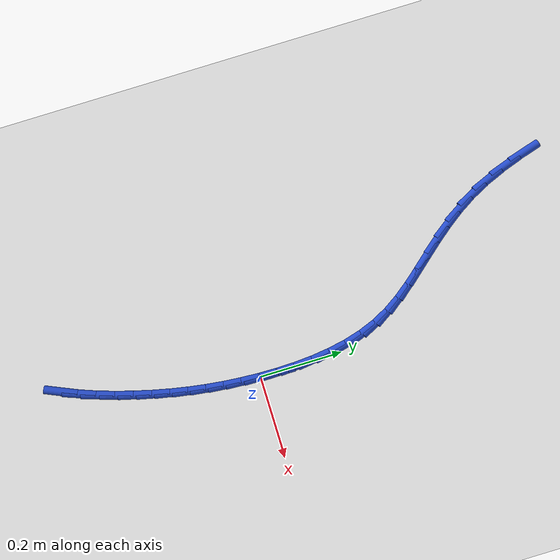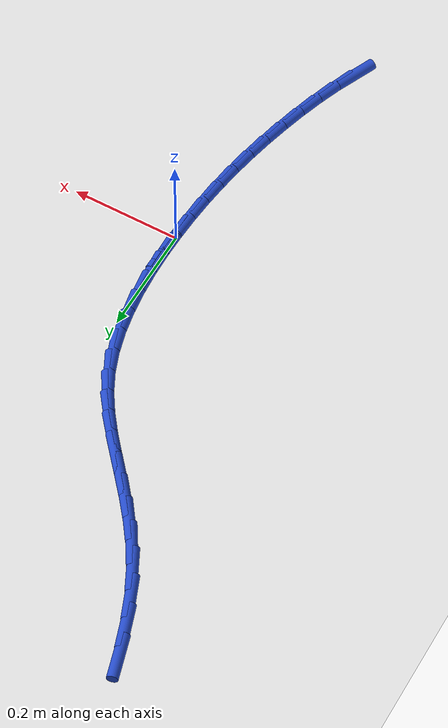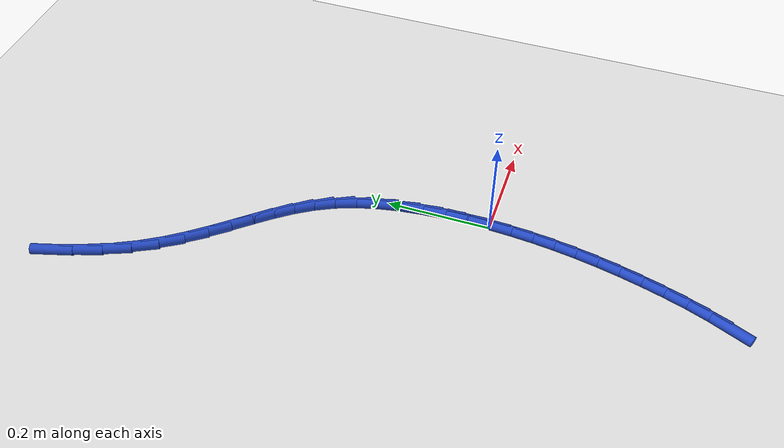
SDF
<sdf version="1.6">
 <world name="default">
  <model name="ground_plane">
   <static>1</static>
   <link name="link">
    <collision name="collision">
     <geometry><plane><normal>0 0 1</normal><size>100 100</size></plane></geometry>
     <surface><friction><ode><mu>100</mu><mu2>50</mu2></ode></friction></surface>
    </collision>
    <visual name="visual">
     <cast_shadows>0</cast_shadows>
     <geometry><plane><normal>0 0 1</normal><size>100 100</size></plane></geometry>
     <material>
      <script><uri>file://media/materials/scripts/gazebo.material</uri><name>Gazebo/WhiteGlow</name></script>
     </material>
    </visual>
   </link>
  </model>
  <model name="line">
   <link name="link_0">
    <pose>9.107298248878237e-18 -3.469446951953614e-17 0.01 0 1.57 1.554007148808215</pose>
    <collision name="collision">
     <geometry><cylinder><radius>0.01</radius><length>0.08</length></cylinder></geometry>
    </collision>
    <visual name="visual">
     <material>
      <script><name>Gazebo/Blue</name><uri>file://media/materials/scripts/gazebo.material</uri></script>
     </material>
     <geometry><cylinder><radius>0.01</radius><length>0.08</length></cylinder></geometry>
    </visual>
   </link>
   <link name="link_1">
    <pose>0.0007371283879256532 0.04390084657426722 0.01 0 1.57 -1.5478041733718482</pose>
    <collision name="collision">
     <geometry><cylinder><radius>0.01</radius><length>0.08</length></cylinder></geometry>
    </collision>
    <visual name="visual">
     <material>
      <script><name>Gazebo/Blue</name><uri>file://media/materials/scripts/gazebo.material</uri></script>
     </material>
     <geometry><cylinder><radius>0.01</radius><length>0.08</length></cylinder></geometry>
    </visual>
   </link>
   <link name="link_2">
    <pose>-0.0002791137424871577 0.08809257713083264 0.01 0 1.57 -1.5006837348284627</pose>
    <collision name="collision">
     <geometry><cylinder><radius>0.01</radius><length>0.08</length></cylinder></geometry>
    </collision>
    <visual name="visual">
     <material>
      <script><name>Gazebo/Blue</name><uri>file://media/materials/scripts/gazebo.material</uri></script>
     </material>
     <geometry><cylinder><radius>0.01</radius><length>0.08</length></cylinder></geometry>
    </visual>
   </link>
   <link name="link_3">
    <pose>-0.0033679881207795744 0.13207627860192328 0.01 0 1.57 -1.4448223519250336</pose>
    <collision name="collision">
     <geometry><cylinder><radius>0.01</radius><length>0.08</length></cylinder></geometry>
    </collision>
    <visual name="visual">
     <material>
      <script><name>Gazebo/Blue</name><uri>file://media/materials/scripts/gazebo.material</uri></script>
     </material>
     <geometry><cylinder><radius>0.01</radius><length>0.08</length></cylinder></geometry>
    </visual>
   </link>
   <link name="link_4">
    <pose>-0.008848756476492754 0.17535303791976634 0.01 0 1.57 -1.3784856092452</pose>
    <collision name="collision">
     <geometry><cylinder><radius>0.01</radius><length>0.08</length></cylinder></geometry>
    </collision>
    <visual name="visual">
     <material>
      <script><name>Gazebo/Blue</name><uri>file://media/materials/scripts/gazebo.material</uri></script>
     </material>
     <geometry><cylinder><radius>0.01</radius><length>0.08</length></cylinder></geometry>
    </visual>
   </link>
   <link name="link_5">
    <pose>-0.01704068053916784 0.21742394201658885 0.01 0 1.57 -1.2996304046909632</pose>
    <collision name="collision">
     <geometry><cylinder><radius>0.01</radius><length>0.08</length></cylinder></geometry>
    </collision>
    <visual name="visual">
     <material>
      <script><name>Gazebo/Blue</name><uri>file://media/materials/scripts/gazebo.material</uri></script>
     </material>
     <geometry><cylinder><radius>0.01</radius><length>0.08</length></cylinder></geometry>
    </visual>
   </link>
   <link name="link_6">
    <pose>-0.028263022038345985 0.25779007782461794 0.01 0 1.57 -1.2060408912454148</pose>
    <collision name="collision">
     <geometry><cylinder><radius>0.01</radius><length>0.08</length></cylinder></geometry>
    </collision>
    <visual name="visual">
     <material>
      <script><name>Gazebo/Blue</name><uri>file://media/materials/scripts/gazebo.material</uri></script>
     </material>
     <geometry><cylinder><radius>0.01</radius><length>0.08</length></cylinder></geometry>
    </visual>
   </link>
   <link name="link_7">
    <pose>-0.042835042703568374 0.2959525322760808 0.01 0 1.57 -1.0973697714715052</pose>
    <collision name="collision">
     <geometry><cylinder><radius>0.01</radius><length>0.08</length></cylinder></geometry>
    </collision>
    <visual name="visual">
     <material>
      <script><name>Gazebo/Blue</name><uri>file://media/materials/scripts/gazebo.material</uri></script>
     </material>
     <geometry><cylinder><radius>0.01</radius><length>0.08</length></cylinder></geometry>
    </visual>
   </link>
   <link name="link_8">
    <pose>-0.0610305144496441 0.3314708519281472 0.01 0 1.57 -0.9956041551505752</pose>
    <collision name="collision">
     <geometry><cylinder><radius>0.01</radius><length>0.08</length></cylinder></geometry>
    </collision>
    <visual name="visual">
     <material>
      <script><name>Gazebo/Blue</name><uri>file://media/materials/scripts/gazebo.material</uri></script>
     </material>
     <geometry><cylinder><radius>0.01</radius><length>0.08</length></cylinder></geometry>
    </visual>
   </link>
   <link name="link_9">
    <pose>-0.0825420773117032 0.3646514043995482 0.01 0 1.57 -0.9198542157680601</pose>
    <collision name="collision">
     <geometry><cylinder><radius>0.01</radius><length>0.08</length></cylinder></geometry>
    </collision>
    <visual name="visual">
     <material>
      <script><name>Gazebo/Blue</name><uri>file://media/materials/scripts/gazebo.material</uri></script>
     </material>
     <geometry><cylinder><radius>0.01</radius><length>0.08</length></cylinder></geometry>
    </visual>
   </link>
   <link name="link_10">
    <pose>-0.1066610130613632 0.39631634867222204 0.01 0 1.57 -0.8724217180830622</pose>
    <collision name="collision">
     <geometry><cylinder><radius>0.01</radius><length>0.08</length></cylinder></geometry>
    </collision>
    <visual name="visual">
     <material>
      <script><name>Gazebo/Blue</name><uri>file://media/materials/scripts/gazebo.material</uri></script>
     </material>
     <geometry><cylinder><radius>0.01</radius><length>0.08</length></cylinder></geometry>
    </visual>
   </link>
   <link name="link_11">
    <pose>-0.13267061957796325 0.4272981039446175 0.01 0 1.57 -0.8529867306650798</pose>
    <collision name="collision">
     <geometry><cylinder><radius>0.01</radius><length>0.08</length></cylinder></geometry>
    </collision>
    <visual name="visual">
     <material>
      <script><name>Gazebo/Blue</name><uri>file://media/materials/scripts/gazebo.material</uri></script>
     </material>
     <geometry><cylinder><radius>0.01</radius><length>0.08</length></cylinder></geometry>
    </visual>
   </link>
   <link name="link_12">
    <pose>-0.1598541947408422 0.45842908941518273 0.01 0 1.57 -0.8600962912364204</pose>
    <collision name="collision">
     <geometry><cylinder><radius>0.01</radius><length>0.08</length></cylinder></geometry>
    </collision>
    <visual name="visual">
     <material>
      <script><name>Gazebo/Blue</name><uri>file://media/materials/scripts/gazebo.material</uri></script>
     </material>
     <geometry><cylinder><radius>0.01</radius><length>0.08</length></cylinder></geometry>
    </visual>
   </link>
   <link name="link_13">
    <pose>-0.18749503642933948 0.4905417242823671 0.01 0 1.57 -0.8917560117625842</pose>
    <collision name="collision">
     <geometry><cylinder><radius>0.01</radius><length>0.08</length></cylinder></geometry>
    </collision>
    <visual name="visual">
     <material>
      <script><name>Gazebo/Blue</name><uri>file://media/materials/scripts/gazebo.material</uri></script>
     </material>
     <geometry><cylinder><radius>0.01</radius><length>0.08</length></cylinder></geometry>
    </visual>
   </link>
   <link name="link_14">
    <pose>-0.2148764425227939 0.5244684277446191 0.01 0 1.57 -0.9454676940283231</pose>
    <collision name="collision">
     <geometry><cylinder><radius>0.01</radius><length>0.08</length></cylinder></geometry>
    </collision>
    <visual name="visual">
     <material>
      <script><name>Gazebo/Blue</name><uri>file://media/materials/scripts/gazebo.material</uri></script>
     </material>
     <geometry><cylinder><radius>0.01</radius><length>0.08</length></cylinder></geometry>
    </visual>
   </link>
   <link name="link_15">
    <pose>-0.24128171090054457 0.5610416190003872 0.01 0 1.57 -1.017965380930945</pose>
    <collision name="collision">
     <geometry><cylinder><radius>0.01</radius><length>0.08</length></cylinder></geometry>
    </collision>
    <visual name="visual">
     <material>
      <script><name>Gazebo/Blue</name><uri>file://media/materials/scripts/gazebo.material</uri></script>
     </material>
     <geometry><cylinder><radius>0.01</radius><length>0.08</length></cylinder></geometry>
    </visual>
   </link>
   <link name="link_16">
    <pose>-0.2659941394419307 0.6010937172481206 0.01 0 1.57 -1.1044884392890215</pose>
    <collision name="collision">
     <geometry><cylinder><radius>0.01</radius><length>0.08</length></cylinder></geometry>
    </collision>
    <visual name="visual">
     <material>
      <script><name>Gazebo/Blue</name><uri>file://media/materials/scripts/gazebo.material</uri></script>
     </material>
     <geometry><cylinder><radius>0.01</radius><length>0.08</length></cylinder></geometry>
    </visual>
   </link>
   <link name="link_17">
    <pose>-0.2883113769959543 0.6454329123767709 0.01 0 1.57 -1.1851848594180354</pose>
    <collision name="collision">
     <geometry><cylinder><radius>0.01</radius><length>0.08</length></cylinder></geometry>
    </collision>
    <visual name="visual">
     <material>
      <script><name>Gazebo/Blue</name><uri>file://media/materials/scripts/gazebo.material</uri></script>
     </material>
     <geometry><cylinder><radius>0.01</radius><length>0.08</length></cylinder></geometry>
    </visual>
   </link>
   <link name="link_18">
    <pose>-0.30803390145236614 0.6940184481247369 0.01 0 1.57 -1.2437518622695176</pose>
    <collision name="collision">
     <geometry><cylinder><radius>0.01</radius><length>0.08</length></cylinder></geometry>
    </collision>
    <visual name="visual">
     <material>
      <script><name>Gazebo/Blue</name><uri>file://media/materials/scripts/gazebo.material</uri></script>
     </material>
     <geometry><cylinder><radius>0.01</radius><length>0.08</length></cylinder></geometry>
    </visual>
   </link>
   <link name="link_19">
    <pose>-0.3255852012506695 0.745757714886426 0.01 0 1.57 -1.2840960572406794</pose>
    <collision name="collision">
     <geometry><cylinder><radius>0.01</radius><length>0.08</length></cylinder></geometry>
    </collision>
    <visual name="visual">
     <material>
      <script><name>Gazebo/Blue</name><uri>file://media/materials/scripts/gazebo.material</uri></script>
     </material>
     <geometry><cylinder><radius>0.01</radius><length>0.08</length></cylinder></geometry>
    </visual>
   </link>
   <link name="link_189">
    <pose>-0.10265203635830787 -0.4583870596736308 0.01 0 1.57 1.160726559877759</pose>
    <collision name="collision">
     <geometry><cylinder><radius>0.01</radius><length>0.08</length></cylinder></geometry>
    </collision>
    <visual name="visual">
     <material>
      <script><name>Gazebo/Blue</name><uri>file://media/materials/scripts/gazebo.material</uri></script>
     </material>
     <geometry><cylinder><radius>0.01</radius><length>0.08</length></cylinder></geometry>
    </visual>
   </link>
   <link name="link_190">
    <pose>-0.0853042805557271 -0.4184809382124054 0.01 0 1.57 1.2158457492833457</pose>
    <collision name="collision">
     <geometry><cylinder><radius>0.01</radius><length>0.08</length></cylinder></geometry>
    </collision>
    <visual name="visual">
     <material>
      <script><name>Gazebo/Blue</name><uri>file://media/materials/scripts/gazebo.material</uri></script>
     </material>
     <geometry><cylinder><radius>0.01</radius><length>0.08</length></cylinder></geometry>
    </visual>
   </link>
   <link name="link_191">
    <pose>-0.07009064213981 -0.37743498434021217 0.01 0 1.57 1.259831054603846</pose>
    <collision name="collision">
     <geometry><cylinder><radius>0.01</radius><length>0.08</length></cylinder></geometry>
    </collision>
    <visual name="visual">
     <material>
      <script><name>Gazebo/Blue</name><uri>file://media/materials/scripts/gazebo.material</uri></script>
     </material>
     <geometry><cylinder><radius>0.01</radius><length>0.08</length></cylinder></geometry>
    </visual>
   </link>
   <link name="link_192">
    <pose>-0.056704939113406586 -0.3357858560164167 0.01 0 1.57 1.2937997183648842</pose>
    <collision name="collision">
     <geometry><cylinder><radius>0.01</radius><length>0.08</length></cylinder></geometry>
    </collision>
    <visual name="visual">
     <material>
      <script><name>Gazebo/Blue</name><uri>file://media/materials/scripts/gazebo.material</uri></script>
     </material>
     <geometry><cylinder><radius>0.01</radius><length>0.08</length></cylinder></geometry>
    </visual>
   </link>
   <link name="link_193">
    <pose>-0.044843462915692564 -0.29406495756206047 0.01 0 1.57 1.3227540386715608</pose>
    <collision name="collision">
     <geometry><cylinder><radius>0.01</radius><length>0.08</length></cylinder></geometry>
    </collision>
    <visual name="visual">
     <material>
      <script><name>Gazebo/Blue</name><uri>file://media/materials/scripts/gazebo.material</uri></script>
     </material>
     <geometry><cylinder><radius>0.01</radius><length>0.08</length></cylinder></geometry>
    </visual>
   </link>
   <link name="link_194">
    <pose>-0.03432684710800621 -0.25253958763641476 0.01 0 1.57 1.3530220404374702</pose>
    <collision name="collision">
     <geometry><cylinder><radius>0.01</radius><length>0.08</length></cylinder></geometry>
    </collision>
    <visual name="visual">
     <material>
      <script><name>Gazebo/Blue</name><uri>file://media/materials/scripts/gazebo.material</uri></script>
     </material>
     <geometry><cylinder><radius>0.01</radius><length>0.08</length></cylinder></geometry>
    </visual>
   </link>
   <link name="link_195">
    <pose>-0.025155761836811775 -0.2110946428564531 0.01 0 1.57 1.3848026430527285</pose>
    <collision name="collision">
     <geometry><cylinder><radius>0.01</radius><length>0.08</length></cylinder></geometry>
    </collision>
    <visual name="visual">
     <material>
      <script><name>Gazebo/Blue</name><uri>file://media/materials/scripts/gazebo.material</uri></script>
     </material>
     <geometry><cylinder><radius>0.01</radius><length>0.08</length></cylinder></geometry>
    </visual>
   </link>
   <link name="link_196">
    <pose>-0.017344970144160192 -0.16958508618954962 0.01 0 1.57 1.4177396926724453</pose>
    <collision name="collision">
     <geometry><cylinder><radius>0.01</radius><length>0.08</length></cylinder></geometry>
    </collision>
    <visual name="visual">
     <material>
      <script><name>Gazebo/Blue</name><uri>file://media/materials/scripts/gazebo.material</uri></script>
     </material>
     <geometry><cylinder><radius>0.01</radius><length>0.08</length></cylinder></geometry>
    </visual>
   </link>
   <link name="link_197">
    <pose>-0.010909235072102312 -0.1278658806030784 0.01 0 1.57 1.4514365576795567</pose>
    <collision name="collision">
     <geometry><cylinder><radius>0.01</radius><length>0.08</length></cylinder></geometry>
    </collision>
    <visual name="visual">
     <material>
      <script><name>Gazebo/Blue</name><uri>file://media/materials/scripts/gazebo.material</uri></script>
     </material>
     <geometry><cylinder><radius>0.01</radius><length>0.08</length></cylinder></geometry>
    </visual>
   </link>
   <link name="link_198">
    <pose>-0.005863319662689059 -0.08579198906441363 0.01 0 1.57 1.4854737105382556</pose>
    <collision name="collision">
     <geometry><cylinder><radius>0.01</radius><length>0.08</length></cylinder></geometry>
    </collision>
    <visual name="visual">
     <material>
      <script><name>Gazebo/Blue</name><uri>file://media/materials/scripts/gazebo.material</uri></script>
     </material>
     <geometry><cylinder><radius>0.01</radius><length>0.08</length></cylinder></geometry>
    </visual>
   </link>
   <link name="link_199">
    <pose>-0.0022219869579713208 -0.04321837454092945 0.01 0 1.57 1.5194285396123848</pose>
    <collision name="collision">
     <geometry><cylinder><radius>0.01</radius><length>0.08</length></cylinder></geometry>
    </collision>
    <visual name="visual">
     <material>
      <script><name>Gazebo/Blue</name><uri>file://media/materials/scripts/gazebo.material</uri></script>
     </material>
     <geometry><cylinder><radius>0.01</radius><length>0.08</length></cylinder></geometry>
    </visual>
   </link>
   <link name="link_200">
    <pose>8.673617379884035e-18 -1.0408340855860843e-16 0.01 0 1.57 1.5528952420490052</pose>
    <collision name="collision">
     <geometry><cylinder><radius>0.01</radius><length>0.08</length></cylinder></geometry>
    </collision>
    <visual name="visual">
     <material>
      <script><name>Gazebo/Blue</name><uri>file://media/materials/scripts/gazebo.material</uri></script>
     </material>
     <geometry><cylinder><radius>0.01</radius><length>0.08</length></cylinder></geometry>
    </visual>
   </link>
   <link name="link_201">
    <pose>0.0007878781691740317 0.044008171591001274 0.01 0 1.57 1.5528952420490052</pose>
    <collision name="collision">
     <geometry><cylinder><radius>0.01</radius><length>0.08</length></cylinder></geometry>
    </collision>
    <visual name="visual">
     <material>
      <script><name>Gazebo/Blue</name><uri>file://media/materials/scripts/gazebo.material</uri></script>
     </material>
     <geometry><cylinder><radius>0.01</radius><length>0.08</length></cylinder></geometry>
    </visual>
   </link>
  </model>
 </world>
</sdf>
